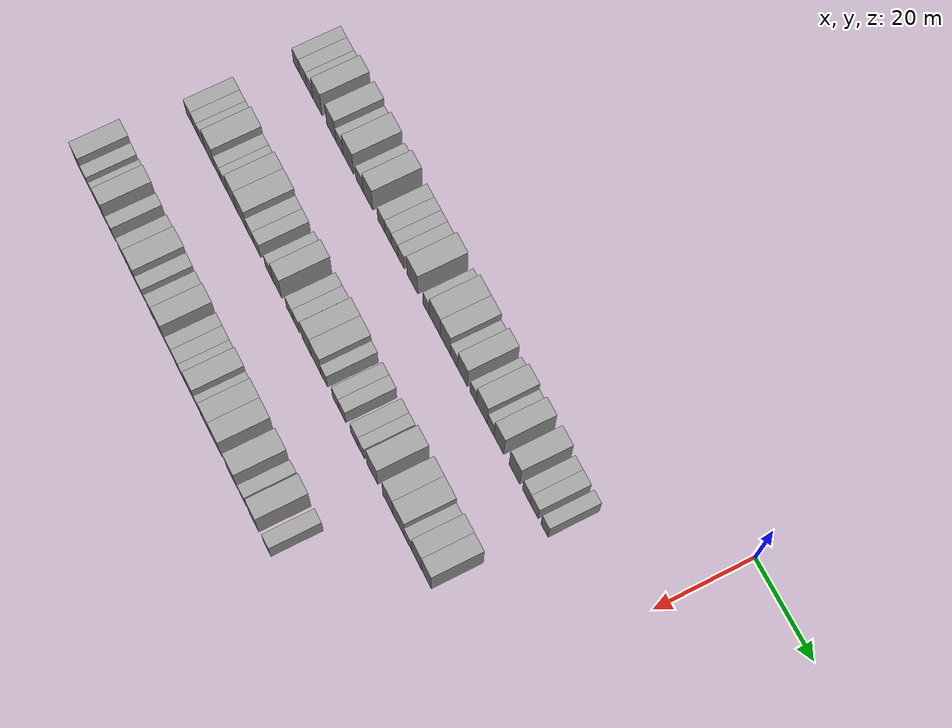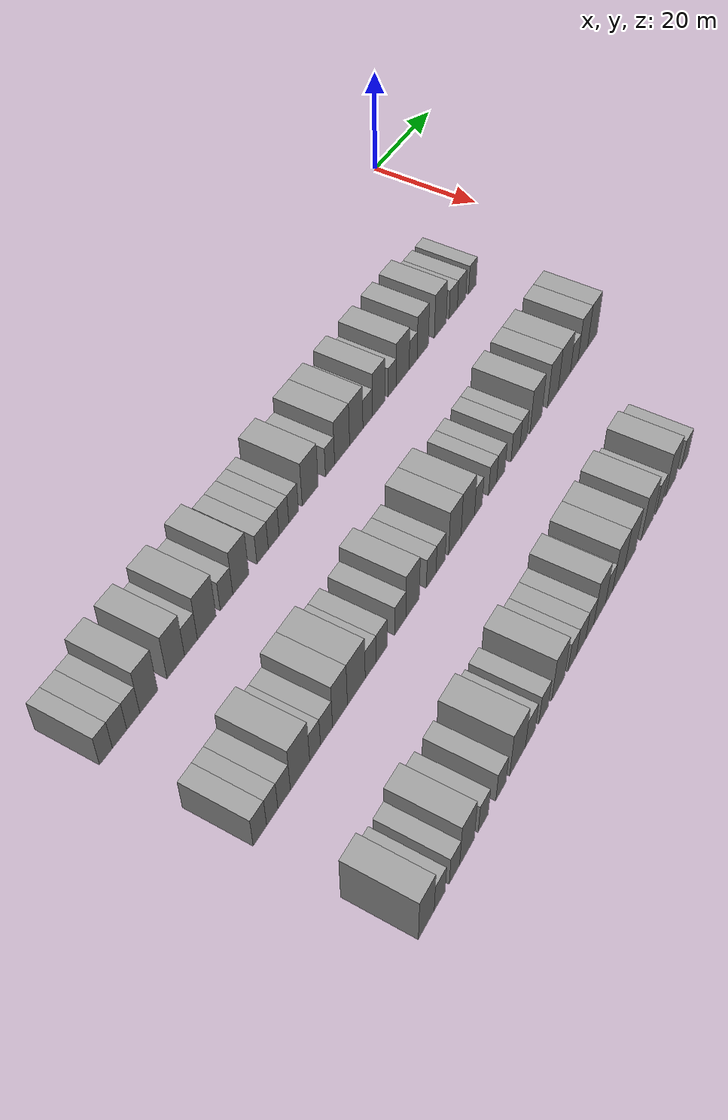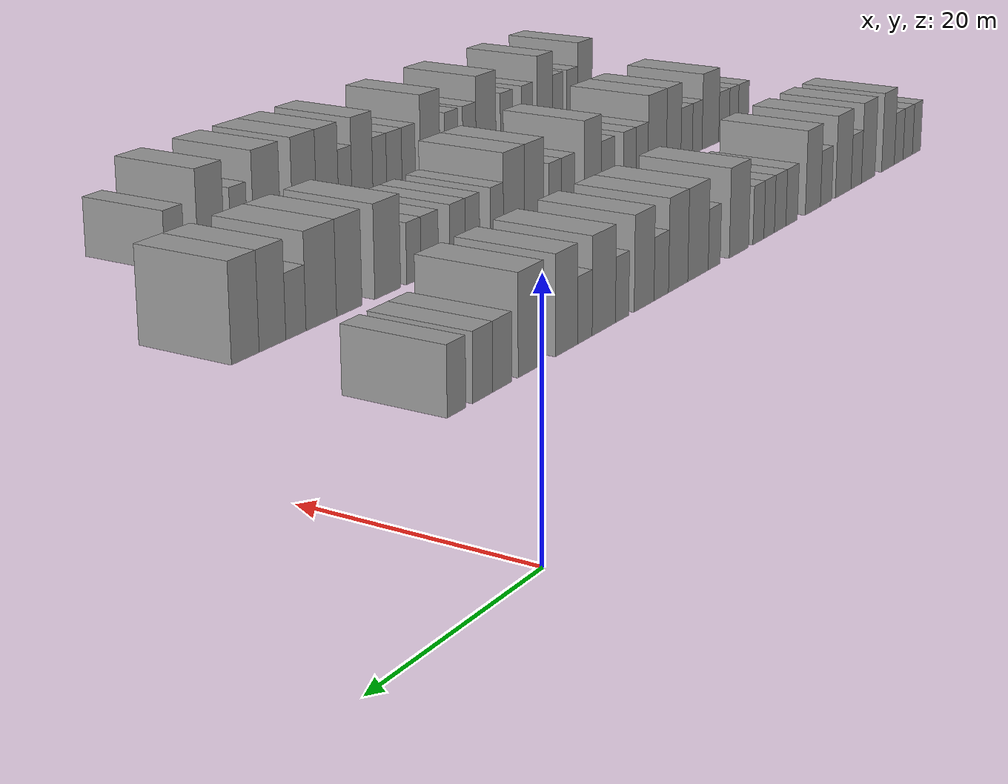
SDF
<sdf version="1.6">
 <world name="default">
  <model name="building_57">
   <static>1</static>
   <pose>25.0000 -118.8301 0 0.000000 0.000000 0.000000</pose>
   <link name="link">
    <pose>0 0 3.00 0 0 0</pose>
    <collision name="collision"><geometry><box><size>10.0000 2.5911 6.0000</size></box></geometry></collision>
    <visual name="visual">
     <cast_shadows>0</cast_shadows>
     <geometry><box><size>10.0000 2.5911 6.0000</size></box></geometry>
     <material>
      <script>
       <uri>model://grey_wall/materials/scripts</uri>
       <uri>model://grey_wall/materials/textures</uri>
       <name>vrc/grey_wall</name>
      </script>
     </material>
    </visual>
   </link>
  </model>
  <model name="building_58">
   <static>1</static>
   <pose>25.0000 -116.0676 0 0.000000 0.000000 0.000000</pose>
   <link name="link">
    <pose>0 0 3.00 0 0 0</pose>
    <collision name="collision"><geometry><box><size>10.0000 2.9338 6.0000</size></box></geometry></collision>
    <visual name="visual">
     <cast_shadows>0</cast_shadows>
     <geometry><box><size>10.0000 2.9338 6.0000</size></box></geometry>
     <material>
      <script>
       <uri>model://grey_wall/materials/scripts</uri>
       <uri>model://grey_wall/materials/textures</uri>
       <name>vrc/grey_wall</name>
      </script>
     </material>
    </visual>
   </link>
  </model>
  <model name="building_59">
   <static>1</static>
   <pose>25.0000 -113.2527 0 0.000000 0.000000 0.000000</pose>
   <link name="link">
    <pose>0 0 3.00 0 0 0</pose>
    <collision name="collision"><geometry><box><size>10.0000 2.6960 6.0000</size></box></geometry></collision>
    <visual name="visual">
     <cast_shadows>0</cast_shadows>
     <geometry><box><size>10.0000 2.6960 6.0000</size></box></geometry>
     <material>
      <script>
       <uri>model://grey_wall/materials/scripts</uri>
       <uri>model://grey_wall/materials/textures</uri>
       <name>vrc/grey_wall</name>
      </script>
     </material>
    </visual>
   </link>
  </model>
  <model name="building_60">
   <static>1</static>
   <pose>25.0000 -109.9994 0 0.000000 0.000000 0.000000</pose>
   <link name="link">
    <pose>0 0 4.50 0 0 0</pose>
    <collision name="collision"><geometry><box><size>10.0000 3.8105 9.0000</size></box></geometry></collision>
    <visual name="visual">
     <cast_shadows>0</cast_shadows>
     <geometry><box><size>10.0000 3.8105 9.0000</size></box></geometry>
     <material>
      <script>
       <uri>model://grey_wall/materials/scripts</uri>
       <uri>model://grey_wall/materials/textures</uri>
       <name>vrc/grey_wall</name>
      </script>
     </material>
    </visual>
   </link>
  </model>
  <model name="building_61">
   <static>1</static>
   <pose>25.0000 -104.1493 0 0.000000 0.000000 0.000000</pose>
   <link name="link">
    <pose>0 0 4.50 0 0 0</pose>
    <collision name="collision"><geometry><box><size>10.0000 3.8898 9.0000</size></box></geometry></collision>
    <visual name="visual">
     <cast_shadows>0</cast_shadows>
     <geometry><box><size>10.0000 3.8898 9.0000</size></box></geometry>
     <material>
      <script>
       <uri>model://grey_wall/materials/scripts</uri>
       <uri>model://grey_wall/materials/textures</uri>
       <name>vrc/grey_wall</name>
      </script>
     </material>
    </visual>
   </link>
  </model>
  <model name="building_62">
   <static>1</static>
   <pose>25.0000 -100.7538 0 0.000000 0.000000 0.000000</pose>
   <link name="link">
    <pose>0 0 3.00 0 0 0</pose>
    <collision name="collision"><geometry><box><size>10.0000 2.9012 6.0000</size></box></geometry></collision>
    <visual name="visual">
     <cast_shadows>0</cast_shadows>
     <geometry><box><size>10.0000 2.9012 6.0000</size></box></geometry>
     <material>
      <script>
       <uri>model://grey_wall/materials/scripts</uri>
       <uri>model://grey_wall/materials/textures</uri>
       <name>vrc/grey_wall</name>
      </script>
     </material>
    </visual>
   </link>
  </model>
  <model name="building_63">
   <static>1</static>
   <pose>25.0000 -97.1521 0 0.000000 0.000000 0.000000</pose>
   <link name="link">
    <pose>0 0 4.50 0 0 0</pose>
    <collision name="collision"><geometry><box><size>10.0000 4.3023 9.0000</size></box></geometry></collision>
    <visual name="visual">
     <cast_shadows>0</cast_shadows>
     <geometry><box><size>10.0000 4.3023 9.0000</size></box></geometry>
     <material>
      <script>
       <uri>model://grey_wall/materials/scripts</uri>
       <uri>model://grey_wall/materials/textures</uri>
       <name>vrc/grey_wall</name>
      </script>
     </material>
    </visual>
   </link>
  </model>
  <model name="building_64">
   <static>1</static>
   <pose>25.0000 -92.5149 0 0.000000 0.000000 0.000000</pose>
   <link name="link">
    <pose>0 0 3.00 0 0 0</pose>
    <collision name="collision"><geometry><box><size>10.0000 2.9720 6.0000</size></box></geometry></collision>
    <visual name="visual">
     <cast_shadows>0</cast_shadows>
     <geometry><box><size>10.0000 2.9720 6.0000</size></box></geometry>
     <material>
      <script>
       <uri>model://grey_wall/materials/scripts</uri>
       <uri>model://grey_wall/materials/textures</uri>
       <name>vrc/grey_wall</name>
      </script>
     </material>
    </visual>
   </link>
  </model>
  <model name="building_65">
   <static>1</static>
   <pose>25.0000 -89.0761 0 0.000000 0.000000 0.000000</pose>
   <link name="link">
    <pose>0 0 4.50 0 0 0</pose>
    <collision name="collision"><geometry><box><size>10.0000 3.9056 9.0000</size></box></geometry></collision>
    <visual name="visual">
     <cast_shadows>0</cast_shadows>
     <geometry><box><size>10.0000 3.9056 9.0000</size></box></geometry>
     <material>
      <script>
       <uri>model://grey_wall/materials/scripts</uri>
       <uri>model://grey_wall/materials/textures</uri>
       <name>vrc/grey_wall</name>
      </script>
     </material>
    </visual>
   </link>
  </model>
  <model name="building_66">
   <static>1</static>
   <pose>25.0000 -83.6893 0 0.000000 0.000000 0.000000</pose>
   <link name="link">
    <pose>0 0 3.00 0 0 0</pose>
    <collision name="collision"><geometry><box><size>10.0000 2.8680 6.0000</size></box></geometry></collision>
    <visual name="visual">
     <cast_shadows>0</cast_shadows>
     <geometry><box><size>10.0000 2.8680 6.0000</size></box></geometry>
     <material>
      <script>
       <uri>model://grey_wall/materials/scripts</uri>
       <uri>model://grey_wall/materials/textures</uri>
       <name>vrc/grey_wall</name>
      </script>
     </material>
    </visual>
   </link>
  </model>
  <model name="building_67">
   <static>1</static>
   <pose>25.0000 -80.8635 0 0.000000 0.000000 0.000000</pose>
   <link name="link">
    <pose>0 0 3.00 0 0 0</pose>
    <collision name="collision"><geometry><box><size>10.0000 2.7835 6.0000</size></box></geometry></collision>
    <visual name="visual">
     <cast_shadows>0</cast_shadows>
     <geometry><box><size>10.0000 2.7835 6.0000</size></box></geometry>
     <material>
      <script>
       <uri>model://grey_wall/materials/scripts</uri>
       <uri>model://grey_wall/materials/textures</uri>
       <name>vrc/grey_wall</name>
      </script>
     </material>
    </visual>
   </link>
  </model>
  <model name="building_68">
   <static>1</static>
   <pose>25.0000 -78.2213 0 0.000000 0.000000 0.000000</pose>
   <link name="link">
    <pose>0 0 3.00 0 0 0</pose>
    <collision name="collision"><geometry><box><size>10.0000 2.5008 6.0000</size></box></geometry></collision>
    <visual name="visual">
     <cast_shadows>0</cast_shadows>
     <geometry><box><size>10.0000 2.5008 6.0000</size></box></geometry>
     <material>
      <script>
       <uri>model://grey_wall/materials/scripts</uri>
       <uri>model://grey_wall/materials/textures</uri>
       <name>vrc/grey_wall</name>
      </script>
     </material>
    </visual>
   </link>
  </model>
  <model name="building_69">
   <static>1</static>
   <pose>25.0000 -75.6935 0 0.000000 0.000000 0.000000</pose>
   <link name="link">
    <pose>0 0 3.00 0 0 0</pose>
    <collision name="collision"><geometry><box><size>10.0000 2.5548 6.0000</size></box></geometry></collision>
    <visual name="visual">
     <cast_shadows>0</cast_shadows>
     <geometry><box><size>10.0000 2.5548 6.0000</size></box></geometry>
     <material>
      <script>
       <uri>model://grey_wall/materials/scripts</uri>
       <uri>model://grey_wall/materials/textures</uri>
       <name>vrc/grey_wall</name>
      </script>
     </material>
    </visual>
   </link>
  </model>
  <model name="building_70">
   <static>1</static>
   <pose>25.0000 -71.2420 0 0.000000 0.000000 0.000000</pose>
   <link name="link">
    <pose>0 0 4.50 0 0 0</pose>
    <collision name="collision"><geometry><box><size>10.0000 4.3483 9.0000</size></box></geometry></collision>
    <visual name="visual">
     <cast_shadows>0</cast_shadows>
     <geometry><box><size>10.0000 4.3483 9.0000</size></box></geometry>
     <material>
      <script>
       <uri>model://grey_wall/materials/scripts</uri>
       <uri>model://grey_wall/materials/textures</uri>
       <name>vrc/grey_wall</name>
      </script>
     </material>
    </visual>
   </link>
  </model>
  <model name="building_71">
   <static>1</static>
   <pose>25.0000 -65.7825 0 0.000000 0.000000 0.000000</pose>
   <link name="link">
    <pose>0 0 3.00 0 0 0</pose>
    <collision name="collision"><geometry><box><size>10.0000 2.5708 6.0000</size></box></geometry></collision>
    <visual name="visual">
     <cast_shadows>0</cast_shadows>
     <geometry><box><size>10.0000 2.5708 6.0000</size></box></geometry>
     <material>
      <script>
       <uri>model://grey_wall/materials/scripts</uri>
       <uri>model://grey_wall/materials/textures</uri>
       <name>vrc/grey_wall</name>
      </script>
     </material>
    </visual>
   </link>
  </model>
  <model name="building_72">
   <static>1</static>
   <pose>25.0000 -62.3604 0 0.000000 0.000000 0.000000</pose>
   <link name="link">
    <pose>0 0 4.50 0 0 0</pose>
    <collision name="collision"><geometry><box><size>10.0000 4.2733 9.0000</size></box></geometry></collision>
    <visual name="visual">
     <cast_shadows>0</cast_shadows>
     <geometry><box><size>10.0000 4.2733 9.0000</size></box></geometry>
     <material>
      <script>
       <uri>model://grey_wall/materials/scripts</uri>
       <uri>model://grey_wall/materials/textures</uri>
       <name>vrc/grey_wall</name>
      </script>
     </material>
    </visual>
   </link>
  </model>
  <model name="building_73">
   <static>1</static>
   <pose>25.0000 -58.2709 0 0.000000 0.000000 0.000000</pose>
   <link name="link">
    <pose>0 0 4.50 0 0 0</pose>
    <collision name="collision"><geometry><box><size>10.0000 3.9057 9.0000</size></box></geometry></collision>
    <visual name="visual">
     <cast_shadows>0</cast_shadows>
     <geometry><box><size>10.0000 3.9057 9.0000</size></box></geometry>
     <material>
      <script>
       <uri>model://grey_wall/materials/scripts</uri>
       <uri>model://grey_wall/materials/textures</uri>
       <name>vrc/grey_wall</name>
      </script>
     </material>
    </visual>
   </link>
  </model>
  <model name="building_74">
   <static>1</static>
   <pose>25.0000 -54.8946 0 0.000000 0.000000 0.000000</pose>
   <link name="link">
    <pose>0 0 3.00 0 0 0</pose>
    <collision name="collision"><geometry><box><size>10.0000 2.8469 6.0000</size></box></geometry></collision>
    <visual name="visual">
     <cast_shadows>0</cast_shadows>
     <geometry><box><size>10.0000 2.8469 6.0000</size></box></geometry>
     <material>
      <script>
       <uri>model://grey_wall/materials/scripts</uri>
       <uri>model://grey_wall/materials/textures</uri>
       <name>vrc/grey_wall</name>
      </script>
     </material>
    </visual>
   </link>
  </model>
  <model name="building_75">
   <static>1</static>
   <pose>25.0000 -51.5770 0 0.000000 0.000000 0.000000</pose>
   <link name="link">
    <pose>0 0 4.50 0 0 0</pose>
    <collision name="collision"><geometry><box><size>10.0000 3.7884 9.0000</size></box></geometry></collision>
    <visual name="visual">
     <cast_shadows>0</cast_shadows>
     <geometry><box><size>10.0000 3.7884 9.0000</size></box></geometry>
     <material>
      <script>
       <uri>model://grey_wall/materials/scripts</uri>
       <uri>model://grey_wall/materials/textures</uri>
       <name>vrc/grey_wall</name>
      </script>
     </material>
    </visual>
   </link>
  </model>
  <model name="building_76">
   <static>1</static>
   <pose>25.0000 -47.4578 0 0.000000 0.000000 0.000000</pose>
   <link name="link">
    <pose>0 0 3.00 0 0 0</pose>
    <collision name="collision"><geometry><box><size>10.0000 2.4500 6.0000</size></box></geometry></collision>
    <visual name="visual">
     <cast_shadows>0</cast_shadows>
     <geometry><box><size>10.0000 2.4500 6.0000</size></box></geometry>
     <material>
      <script>
       <uri>model://grey_wall/materials/scripts</uri>
       <uri>model://grey_wall/materials/textures</uri>
       <name>vrc/grey_wall</name>
      </script>
     </material>
    </visual>
   </link>
  </model>
  <model name="building_77">
   <static>1</static>
   <pose>25.0000 -44.1462 0 0.000000 0.000000 0.000000</pose>
   <link name="link">
    <pose>0 0 4.50 0 0 0</pose>
    <collision name="collision"><geometry><box><size>10.0000 4.1734 9.0000</size></box></geometry></collision>
    <visual name="visual">
     <cast_shadows>0</cast_shadows>
     <geometry><box><size>10.0000 4.1734 9.0000</size></box></geometry>
     <material>
      <script>
       <uri>model://grey_wall/materials/scripts</uri>
       <uri>model://grey_wall/materials/textures</uri>
       <name>vrc/grey_wall</name>
      </script>
     </material>
    </visual>
   </link>
  </model>
  <model name="building_78">
   <static>1</static>
   <pose>25.0000 -40.7878 0 0.000000 0.000000 0.000000</pose>
   <link name="link">
    <pose>0 0 3.00 0 0 0</pose>
    <collision name="collision"><geometry><box><size>10.0000 2.5435 6.0000</size></box></geometry></collision>
    <visual name="visual">
     <cast_shadows>0</cast_shadows>
     <geometry><box><size>10.0000 2.5435 6.0000</size></box></geometry>
     <material>
      <script>
       <uri>model://grey_wall/materials/scripts</uri>
       <uri>model://grey_wall/materials/textures</uri>
       <name>vrc/grey_wall</name>
      </script>
     </material>
    </visual>
   </link>
  </model>
  <model name="building_79">
   <static>1</static>
   <pose>25.0000 -37.6702 0 0.000000 0.000000 0.000000</pose>
   <link name="link">
    <pose>0 0 4.50 0 0 0</pose>
    <collision name="collision"><geometry><box><size>10.0000 3.6915 9.0000</size></box></geometry></collision>
    <visual name="visual">
     <cast_shadows>0</cast_shadows>
     <geometry><box><size>10.0000 3.6915 9.0000</size></box></geometry>
     <material>
      <script>
       <uri>model://grey_wall/materials/scripts</uri>
       <uri>model://grey_wall/materials/textures</uri>
       <name>vrc/grey_wall</name>
      </script>
     </material>
    </visual>
   </link>
  </model>
  <model name="building_80">
   <static>1</static>
   <pose>25.0000 -31.8176 0 0.000000 0.000000 0.000000</pose>
   <link name="link">
    <pose>0 0 4.50 0 0 0</pose>
    <collision name="collision"><geometry><box><size>10.0000 4.0138 9.0000</size></box></geometry></collision>
    <visual name="visual">
     <cast_shadows>0</cast_shadows>
     <geometry><box><size>10.0000 4.0138 9.0000</size></box></geometry>
     <material>
      <script>
       <uri>model://grey_wall/materials/scripts</uri>
       <uri>model://grey_wall/materials/textures</uri>
       <name>vrc/grey_wall</name>
      </script>
     </material>
    </visual>
   </link>
  </model>
  <model name="building_81">
   <static>1</static>
   <pose>25.0000 -27.3669 0 0.000000 0.000000 0.000000</pose>
   <link name="link">
    <pose>0 0 3.00 0 0 0</pose>
    <collision name="collision"><geometry><box><size>10.0000 2.8876 6.0000</size></box></geometry></collision>
    <visual name="visual">
     <cast_shadows>0</cast_shadows>
     <geometry><box><size>10.0000 2.8876 6.0000</size></box></geometry>
     <material>
      <script>
       <uri>model://grey_wall/materials/scripts</uri>
       <uri>model://grey_wall/materials/textures</uri>
       <name>vrc/grey_wall</name>
      </script>
     </material>
    </visual>
   </link>
  </model>
  <model name="building_82">
   <static>1</static>
   <pose>25.0000 -24.4409 0 0.000000 0.000000 0.000000</pose>
   <link name="link">
    <pose>0 0 3.00 0 0 0</pose>
    <collision name="collision"><geometry><box><size>10.0000 2.9643 6.0000</size></box></geometry></collision>
    <visual name="visual">
     <cast_shadows>0</cast_shadows>
     <geometry><box><size>10.0000 2.9643 6.0000</size></box></geometry>
     <material>
      <script>
       <uri>model://grey_wall/materials/scripts</uri>
       <uri>model://grey_wall/materials/textures</uri>
       <name>vrc/grey_wall</name>
      </script>
     </material>
    </visual>
   </link>
  </model>
  <model name="building_83">
   <static>1</static>
   <pose>25.0000 -20.6208 0 0.000000 0.000000 0.000000</pose>
   <link name="link">
    <pose>0 0 3.00 0 0 0</pose>
    <collision name="collision"><geometry><box><size>10.0000 2.6760 6.0000</size></box></geometry></collision>
    <visual name="visual">
     <cast_shadows>0</cast_shadows>
     <geometry><box><size>10.0000 2.6760 6.0000</size></box></geometry>
     <material>
      <script>
       <uri>model://grey_wall/materials/scripts</uri>
       <uri>model://grey_wall/materials/textures</uri>
       <name>vrc/grey_wall</name>
      </script>
     </material>
    </visual>
   </link>
  </model>
  <model name="building_249">
   <static>1</static>
   <pose>47.0000 -118.3741 0 0.000000 0.000000 0.000000</pose>
   <link name="link">
    <pose>0 0 3.00 0 0 0</pose>
    <collision name="collision"><geometry><box><size>10.0000 2.8987 6.0000</size></box></geometry></collision>
    <visual name="visual">
     <cast_shadows>0</cast_shadows>
     <geometry><box><size>10.0000 2.8987 6.0000</size></box></geometry>
     <material>
      <script>
       <uri>model://grey_wall/materials/scripts</uri>
       <uri>model://grey_wall/materials/textures</uri>
       <name>vrc/grey_wall</name>
      </script>
     </material>
    </visual>
   </link>
  </model>
  <model name="building_250">
   <static>1</static>
   <pose>47.0000 -115.6920 0 0.000000 0.000000 0.000000</pose>
   <link name="link">
    <pose>0 0 3.00 0 0 0</pose>
    <collision name="collision"><geometry><box><size>10.0000 2.4655 6.0000</size></box></geometry></collision>
    <visual name="visual">
     <cast_shadows>0</cast_shadows>
     <geometry><box><size>10.0000 2.4655 6.0000</size></box></geometry>
     <material>
      <script>
       <uri>model://grey_wall/materials/scripts</uri>
       <uri>model://grey_wall/materials/textures</uri>
       <name>vrc/grey_wall</name>
      </script>
     </material>
    </visual>
   </link>
  </model>
  <model name="building_251">
   <static>1</static>
   <pose>47.0000 -113.0631 0 0.000000 0.000000 0.000000</pose>
   <link name="link">
    <pose>0 0 3.00 0 0 0</pose>
    <collision name="collision"><geometry><box><size>10.0000 2.7924 6.0000</size></box></geometry></collision>
    <visual name="visual">
     <cast_shadows>0</cast_shadows>
     <geometry><box><size>10.0000 2.7924 6.0000</size></box></geometry>
     <material>
      <script>
       <uri>model://grey_wall/materials/scripts</uri>
       <uri>model://grey_wall/materials/textures</uri>
       <name>vrc/grey_wall</name>
      </script>
     </material>
    </visual>
   </link>
  </model>
  <model name="building_252">
   <static>1</static>
   <pose>47.0000 -109.4588 0 0.000000 0.000000 0.000000</pose>
   <link name="link">
    <pose>0 0 4.50 0 0 0</pose>
    <collision name="collision"><geometry><box><size>10.0000 4.4162 9.0000</size></box></geometry></collision>
    <visual name="visual">
     <cast_shadows>0</cast_shadows>
     <geometry><box><size>10.0000 4.4162 9.0000</size></box></geometry>
     <material>
      <script>
       <uri>model://grey_wall/materials/scripts</uri>
       <uri>model://grey_wall/materials/textures</uri>
       <name>vrc/grey_wall</name>
      </script>
     </material>
    </visual>
   </link>
  </model>
  <model name="building_253">
   <static>1</static>
   <pose>47.0000 -105.9920 0 0.000000 0.000000 0.000000</pose>
   <link name="link">
    <pose>0 0 3.00 0 0 0</pose>
    <collision name="collision"><geometry><box><size>10.0000 2.5172 6.0000</size></box></geometry></collision>
    <visual name="visual">
     <cast_shadows>0</cast_shadows>
     <geometry><box><size>10.0000 2.5172 6.0000</size></box></geometry>
     <material>
      <script>
       <uri>model://grey_wall/materials/scripts</uri>
       <uri>model://grey_wall/materials/textures</uri>
       <name>vrc/grey_wall</name>
      </script>
     </material>
    </visual>
   </link>
  </model>
  <model name="building_254">
   <static>1</static>
   <pose>47.0000 -103.2946 0 0.000000 0.000000 0.000000</pose>
   <link name="link">
    <pose>0 0 3.00 0 0 0</pose>
    <collision name="collision"><geometry><box><size>10.0000 2.8776 6.0000</size></box></geometry></collision>
    <visual name="visual">
     <cast_shadows>0</cast_shadows>
     <geometry><box><size>10.0000 2.8776 6.0000</size></box></geometry>
     <material>
      <script>
       <uri>model://grey_wall/materials/scripts</uri>
       <uri>model://grey_wall/materials/textures</uri>
       <name>vrc/grey_wall</name>
      </script>
     </material>
    </visual>
   </link>
  </model>
  <model name="building_255">
   <static>1</static>
   <pose>47.0000 -100.0454 0 0.000000 0.000000 0.000000</pose>
   <link name="link">
    <pose>0 0 4.50 0 0 0</pose>
    <collision name="collision"><geometry><box><size>10.0000 3.6208 9.0000</size></box></geometry></collision>
    <visual name="visual">
     <cast_shadows>0</cast_shadows>
     <geometry><box><size>10.0000 3.6208 9.0000</size></box></geometry>
     <material>
      <script>
       <uri>model://grey_wall/materials/scripts</uri>
       <uri>model://grey_wall/materials/textures</uri>
       <name>vrc/grey_wall</name>
      </script>
     </material>
    </visual>
   </link>
  </model>
  <model name="building_256">
   <static>1</static>
   <pose>47.0000 -96.0049 0 0.000000 0.000000 0.000000</pose>
   <link name="link">
    <pose>0 0 4.50 0 0 0</pose>
    <collision name="collision"><geometry><box><size>10.0000 4.4601 9.0000</size></box></geometry></collision>
    <visual name="visual">
     <cast_shadows>0</cast_shadows>
     <geometry><box><size>10.0000 4.4601 9.0000</size></box></geometry>
     <material>
      <script>
       <uri>model://grey_wall/materials/scripts</uri>
       <uri>model://grey_wall/materials/textures</uri>
       <name>vrc/grey_wall</name>
      </script>
     </material>
    </visual>
   </link>
  </model>
  <model name="building_257">
   <static>1</static>
   <pose>47.0000 -92.3596 0 0.000000 0.000000 0.000000</pose>
   <link name="link">
    <pose>0 0 3.00 0 0 0</pose>
    <collision name="collision"><geometry><box><size>10.0000 2.8306 6.0000</size></box></geometry></collision>
    <visual name="visual">
     <cast_shadows>0</cast_shadows>
     <geometry><box><size>10.0000 2.8306 6.0000</size></box></geometry>
     <material>
      <script>
       <uri>model://grey_wall/materials/scripts</uri>
       <uri>model://grey_wall/materials/textures</uri>
       <name>vrc/grey_wall</name>
      </script>
     </material>
    </visual>
   </link>
  </model>
  <model name="building_258">
   <static>1</static>
   <pose>47.0000 -89.5088 0 0.000000 0.000000 0.000000</pose>
   <link name="link">
    <pose>0 0 3.00 0 0 0</pose>
    <collision name="collision"><geometry><box><size>10.0000 2.8710 6.0000</size></box></geometry></collision>
    <visual name="visual">
     <cast_shadows>0</cast_shadows>
     <geometry><box><size>10.0000 2.8710 6.0000</size></box></geometry>
     <material>
      <script>
       <uri>model://grey_wall/materials/scripts</uri>
       <uri>model://grey_wall/materials/textures</uri>
       <name>vrc/grey_wall</name>
      </script>
     </material>
    </visual>
   </link>
  </model>
  <model name="building_259">
   <static>1</static>
   <pose>47.0000 -84.5749 0 0.000000 0.000000 0.000000</pose>
   <link name="link">
    <pose>0 0 3.00 0 0 0</pose>
    <collision name="collision"><geometry><box><size>10.0000 2.9968 6.0000</size></box></geometry></collision>
    <visual name="visual">
     <cast_shadows>0</cast_shadows>
     <geometry><box><size>10.0000 2.9968 6.0000</size></box></geometry>
     <material>
      <script>
       <uri>model://grey_wall/materials/scripts</uri>
       <uri>model://grey_wall/materials/textures</uri>
       <name>vrc/grey_wall</name>
      </script>
     </material>
    </visual>
   </link>
  </model>
  <model name="building_260">
   <static>1</static>
   <pose>47.0000 -81.2248 0 0.000000 0.000000 0.000000</pose>
   <link name="link">
    <pose>0 0 4.50 0 0 0</pose>
    <collision name="collision"><geometry><box><size>10.0000 3.7034 9.0000</size></box></geometry></collision>
    <visual name="visual">
     <cast_shadows>0</cast_shadows>
     <geometry><box><size>10.0000 3.7034 9.0000</size></box></geometry>
     <material>
      <script>
       <uri>model://grey_wall/materials/scripts</uri>
       <uri>model://grey_wall/materials/textures</uri>
       <name>vrc/grey_wall</name>
      </script>
     </material>
    </visual>
   </link>
  </model>
  <model name="building_261">
   <static>1</static>
   <pose>47.0000 -75.9961 0 0.000000 0.000000 0.000000</pose>
   <link name="link">
    <pose>0 0 3.00 0 0 0</pose>
    <collision name="collision"><geometry><box><size>10.0000 2.7541 6.0000</size></box></geometry></collision>
    <visual name="visual">
     <cast_shadows>0</cast_shadows>
     <geometry><box><size>10.0000 2.7541 6.0000</size></box></geometry>
     <material>
      <script>
       <uri>model://grey_wall/materials/scripts</uri>
       <uri>model://grey_wall/materials/textures</uri>
       <name>vrc/grey_wall</name>
      </script>
     </material>
    </visual>
   </link>
  </model>
  <model name="building_262">
   <static>1</static>
   <pose>47.0000 -73.2984 0 0.000000 0.000000 0.000000</pose>
   <link name="link">
    <pose>0 0 3.00 0 0 0</pose>
    <collision name="collision"><geometry><box><size>10.0000 2.6412 6.0000</size></box></geometry></collision>
    <visual name="visual">
     <cast_shadows>0</cast_shadows>
     <geometry><box><size>10.0000 2.6412 6.0000</size></box></geometry>
     <material>
      <script>
       <uri>model://grey_wall/materials/scripts</uri>
       <uri>model://grey_wall/materials/textures</uri>
       <name>vrc/grey_wall</name>
      </script>
     </material>
    </visual>
   </link>
  </model>
  <model name="building_263">
   <static>1</static>
   <pose>47.0000 -69.1170 0 0.000000 0.000000 0.000000</pose>
   <link name="link">
    <pose>0 0 4.50 0 0 0</pose>
    <collision name="collision"><geometry><box><size>10.0000 3.7216 9.0000</size></box></geometry></collision>
    <visual name="visual">
     <cast_shadows>0</cast_shadows>
     <geometry><box><size>10.0000 3.7216 9.0000</size></box></geometry>
     <material>
      <script>
       <uri>model://grey_wall/materials/scripts</uri>
       <uri>model://grey_wall/materials/textures</uri>
       <name>vrc/grey_wall</name>
      </script>
     </material>
    </visual>
   </link>
  </model>
  <model name="building_264">
   <static>1</static>
   <pose>47.0000 -65.2083 0 0.000000 0.000000 0.000000</pose>
   <link name="link">
    <pose>0 0 4.50 0 0 0</pose>
    <collision name="collision"><geometry><box><size>10.0000 4.0959 9.0000</size></box></geometry></collision>
    <visual name="visual">
     <cast_shadows>0</cast_shadows>
     <geometry><box><size>10.0000 4.0959 9.0000</size></box></geometry>
     <material>
      <script>
       <uri>model://grey_wall/materials/scripts</uri>
       <uri>model://grey_wall/materials/textures</uri>
       <name>vrc/grey_wall</name>
      </script>
     </material>
    </visual>
   </link>
  </model>
  <model name="building_265">
   <static>1</static>
   <pose>47.0000 -61.9571 0 0.000000 0.000000 0.000000</pose>
   <link name="link">
    <pose>0 0 3.00 0 0 0</pose>
    <collision name="collision"><geometry><box><size>10.0000 2.4065 6.0000</size></box></geometry></collision>
    <visual name="visual">
     <cast_shadows>0</cast_shadows>
     <geometry><box><size>10.0000 2.4065 6.0000</size></box></geometry>
     <material>
      <script>
       <uri>model://grey_wall/materials/scripts</uri>
       <uri>model://grey_wall/materials/textures</uri>
       <name>vrc/grey_wall</name>
      </script>
     </material>
    </visual>
   </link>
  </model>
  <model name="building_266">
   <static>1</static>
   <pose>47.0000 -57.4736 0 0.000000 0.000000 0.000000</pose>
   <link name="link">
    <pose>0 0 3.00 0 0 0</pose>
    <collision name="collision"><geometry><box><size>10.0000 2.5605 6.0000</size></box></geometry></collision>
    <visual name="visual">
     <cast_shadows>0</cast_shadows>
     <geometry><box><size>10.0000 2.5605 6.0000</size></box></geometry>
     <material>
      <script>
       <uri>model://grey_wall/materials/scripts</uri>
       <uri>model://grey_wall/materials/textures</uri>
       <name>vrc/grey_wall</name>
      </script>
     </material>
    </visual>
   </link>
  </model>
  <model name="building_267">
   <static>1</static>
   <pose>47.0000 -54.8199 0 0.000000 0.000000 0.000000</pose>
   <link name="link">
    <pose>0 0 3.00 0 0 0</pose>
    <collision name="collision"><geometry><box><size>10.0000 2.7468 6.0000</size></box></geometry></collision>
    <visual name="visual">
     <cast_shadows>0</cast_shadows>
     <geometry><box><size>10.0000 2.7468 6.0000</size></box></geometry>
     <material>
      <script>
       <uri>model://grey_wall/materials/scripts</uri>
       <uri>model://grey_wall/materials/textures</uri>
       <name>vrc/grey_wall</name>
      </script>
     </material>
    </visual>
   </link>
  </model>
  <model name="building_268">
   <static>1</static>
   <pose>47.0000 -49.9681 0 0.000000 0.000000 0.000000</pose>
   <link name="link">
    <pose>0 0 3.00 0 0 0</pose>
    <collision name="collision"><geometry><box><size>10.0000 2.9569 6.0000</size></box></geometry></collision>
    <visual name="visual">
     <cast_shadows>0</cast_shadows>
     <geometry><box><size>10.0000 2.9569 6.0000</size></box></geometry>
     <material>
      <script>
       <uri>model://grey_wall/materials/scripts</uri>
       <uri>model://grey_wall/materials/textures</uri>
       <name>vrc/grey_wall</name>
      </script>
     </material>
    </visual>
   </link>
  </model>
  <model name="building_269">
   <static>1</static>
   <pose>47.0000 -47.2884 0 0.000000 0.000000 0.000000</pose>
   <link name="link">
    <pose>0 0 3.00 0 0 0</pose>
    <collision name="collision"><geometry><box><size>10.0000 2.4025 6.0000</size></box></geometry></collision>
    <visual name="visual">
     <cast_shadows>0</cast_shadows>
     <geometry><box><size>10.0000 2.4025 6.0000</size></box></geometry>
     <material>
      <script>
       <uri>model://grey_wall/materials/scripts</uri>
       <uri>model://grey_wall/materials/textures</uri>
       <name>vrc/grey_wall</name>
      </script>
     </material>
    </visual>
   </link>
  </model>
  <model name="building_270">
   <static>1</static>
   <pose>47.0000 -43.0171 0 0.000000 0.000000 0.000000</pose>
   <link name="link">
    <pose>0 0 4.50 0 0 0</pose>
    <collision name="collision"><geometry><box><size>10.0000 4.1401 9.0000</size></box></geometry></collision>
    <visual name="visual">
     <cast_shadows>0</cast_shadows>
     <geometry><box><size>10.0000 4.1401 9.0000</size></box></geometry>
     <material>
      <script>
       <uri>model://grey_wall/materials/scripts</uri>
       <uri>model://grey_wall/materials/textures</uri>
       <name>vrc/grey_wall</name>
      </script>
     </material>
    </visual>
   </link>
  </model>
  <model name="building_271">
   <static>1</static>
   <pose>47.0000 -37.0132 0 0.000000 0.000000 0.000000</pose>
   <link name="link">
    <pose>0 0 4.50 0 0 0</pose>
    <collision name="collision"><geometry><box><size>10.0000 3.8678 9.0000</size></box></geometry></collision>
    <visual name="visual">
     <cast_shadows>0</cast_shadows>
     <geometry><box><size>10.0000 3.8678 9.0000</size></box></geometry>
     <material>
      <script>
       <uri>model://grey_wall/materials/scripts</uri>
       <uri>model://grey_wall/materials/textures</uri>
       <name>vrc/grey_wall</name>
      </script>
     </material>
    </visual>
   </link>
  </model>
  <model name="building_272">
   <static>1</static>
   <pose>47.0000 -32.8406 0 0.000000 0.000000 0.000000</pose>
   <link name="link">
    <pose>0 0 4.50 0 0 0</pose>
    <collision name="collision"><geometry><box><size>10.0000 4.4773 9.0000</size></box></geometry></collision>
    <visual name="visual">
     <cast_shadows>0</cast_shadows>
     <geometry><box><size>10.0000 4.4773 9.0000</size></box></geometry>
     <material>
      <script>
       <uri>model://grey_wall/materials/scripts</uri>
       <uri>model://grey_wall/materials/textures</uri>
       <name>vrc/grey_wall</name>
      </script>
     </material>
    </visual>
   </link>
  </model>
  <model name="building_273">
   <static>1</static>
   <pose>47.0000 -29.1661 0 0.000000 0.000000 0.000000</pose>
   <link name="link">
    <pose>0 0 3.00 0 0 0</pose>
    <collision name="collision"><geometry><box><size>10.0000 2.8719 6.0000</size></box></geometry></collision>
    <visual name="visual">
     <cast_shadows>0</cast_shadows>
     <geometry><box><size>10.0000 2.8719 6.0000</size></box></geometry>
     <material>
      <script>
       <uri>model://grey_wall/materials/scripts</uri>
       <uri>model://grey_wall/materials/textures</uri>
       <name>vrc/grey_wall</name>
      </script>
     </material>
    </visual>
   </link>
  </model>
  <model name="building_274">
   <static>1</static>
   <pose>47.0000 -25.8925 0 0.000000 0.000000 0.000000</pose>
   <link name="link">
    <pose>0 0 4.50 0 0 0</pose>
    <collision name="collision"><geometry><box><size>10.0000 3.6751 9.0000</size></box></geometry></collision>
    <visual name="visual">
     <cast_shadows>0</cast_shadows>
     <geometry><box><size>10.0000 3.6751 9.0000</size></box></geometry>
     <material>
      <script>
       <uri>model://grey_wall/materials/scripts</uri>
       <uri>model://grey_wall/materials/textures</uri>
       <name>vrc/grey_wall</name>
      </script>
     </material>
    </visual>
   </link>
  </model>
  <model name="building_275">
   <static>1</static>
   <pose>47.0000 -22.2074 0 0.000000 0.000000 0.000000</pose>
   <link name="link">
    <pose>0 0 4.50 0 0 0</pose>
    <collision name="collision"><geometry><box><size>10.0000 3.6951 9.0000</size></box></geometry></collision>
    <visual name="visual">
     <cast_shadows>0</cast_shadows>
     <geometry><box><size>10.0000 3.6951 9.0000</size></box></geometry>
     <material>
      <script>
       <uri>model://grey_wall/materials/scripts</uri>
       <uri>model://grey_wall/materials/textures</uri>
       <name>vrc/grey_wall</name>
      </script>
     </material>
    </visual>
   </link>
  </model>
  <model name="building_439">
   <static>1</static>
   <pose>69.0000 -118.2815 0 0.000000 0.000000 0.000000</pose>
   <link name="link">
    <pose>0 0 4.50 0 0 0</pose>
    <collision name="collision"><geometry><box><size>10.0000 3.7280 9.0000</size></box></geometry></collision>
    <visual name="visual">
     <cast_shadows>0</cast_shadows>
     <geometry><box><size>10.0000 3.7280 9.0000</size></box></geometry>
     <material>
      <script>
       <uri>model://grey_wall/materials/scripts</uri>
       <uri>model://grey_wall/materials/textures</uri>
       <name>vrc/grey_wall</name>
      </script>
     </material>
    </visual>
   </link>
  </model>
  <model name="building_440">
   <static>1</static>
   <pose>69.0000 -115.0906 0 0.000000 0.000000 0.000000</pose>
   <link name="link">
    <pose>0 0 3.00 0 0 0</pose>
    <collision name="collision"><geometry><box><size>10.0000 2.6538 6.0000</size></box></geometry></collision>
    <visual name="visual">
     <cast_shadows>0</cast_shadows>
     <geometry><box><size>10.0000 2.6538 6.0000</size></box></geometry>
     <material>
      <script>
       <uri>model://grey_wall/materials/scripts</uri>
       <uri>model://grey_wall/materials/textures</uri>
       <name>vrc/grey_wall</name>
      </script>
     </material>
    </visual>
   </link>
  </model>
  <model name="building_441">
   <static>1</static>
   <pose>69.0000 -111.4883 0 0.000000 0.000000 0.000000</pose>
   <link name="link">
    <pose>0 0 3.00 0 0 0</pose>
    <collision name="collision"><geometry><box><size>10.0000 2.5507 6.0000</size></box></geometry></collision>
    <visual name="visual">
     <cast_shadows>0</cast_shadows>
     <geometry><box><size>10.0000 2.5507 6.0000</size></box></geometry>
     <material>
      <script>
       <uri>model://grey_wall/materials/scripts</uri>
       <uri>model://grey_wall/materials/textures</uri>
       <name>vrc/grey_wall</name>
      </script>
     </material>
    </visual>
   </link>
  </model>
  <model name="building_442">
   <static>1</static>
   <pose>69.0000 -108.3526 0 0.000000 0.000000 0.000000</pose>
   <link name="link">
    <pose>0 0 4.50 0 0 0</pose>
    <collision name="collision"><geometry><box><size>10.0000 3.7207 9.0000</size></box></geometry></collision>
    <visual name="visual">
     <cast_shadows>0</cast_shadows>
     <geometry><box><size>10.0000 3.7207 9.0000</size></box></geometry>
     <material>
      <script>
       <uri>model://grey_wall/materials/scripts</uri>
       <uri>model://grey_wall/materials/textures</uri>
       <name>vrc/grey_wall</name>
      </script>
     </material>
    </visual>
   </link>
  </model>
  <model name="building_443">
   <static>1</static>
   <pose>69.0000 -104.1744 0 0.000000 0.000000 0.000000</pose>
   <link name="link">
    <pose>0 0 3.00 0 0 0</pose>
    <collision name="collision"><geometry><box><size>10.0000 2.6358 6.0000</size></box></geometry></collision>
    <visual name="visual">
     <cast_shadows>0</cast_shadows>
     <geometry><box><size>10.0000 2.6358 6.0000</size></box></geometry>
     <material>
      <script>
       <uri>model://grey_wall/materials/scripts</uri>
       <uri>model://grey_wall/materials/textures</uri>
       <name>vrc/grey_wall</name>
      </script>
     </material>
    </visual>
   </link>
  </model>
  <model name="building_444">
   <static>1</static>
   <pose>69.0000 -99.4746 0 0.000000 0.000000 0.000000</pose>
   <link name="link">
    <pose>0 0 3.00 0 0 0</pose>
    <collision name="collision"><geometry><box><size>10.0000 2.7636 6.0000</size></box></geometry></collision>
    <visual name="visual">
     <cast_shadows>0</cast_shadows>
     <geometry><box><size>10.0000 2.7636 6.0000</size></box></geometry>
     <material>
      <script>
       <uri>model://grey_wall/materials/scripts</uri>
       <uri>model://grey_wall/materials/textures</uri>
       <name>vrc/grey_wall</name>
      </script>
     </material>
    </visual>
   </link>
  </model>
  <model name="building_445">
   <static>1</static>
   <pose>69.0000 -94.9070 0 0.000000 0.000000 0.000000</pose>
   <link name="link">
    <pose>0 0 4.50 0 0 0</pose>
    <collision name="collision"><geometry><box><size>10.0000 4.3717 9.0000</size></box></geometry></collision>
    <visual name="visual">
     <cast_shadows>0</cast_shadows>
     <geometry><box><size>10.0000 4.3717 9.0000</size></box></geometry>
     <material>
      <script>
       <uri>model://grey_wall/materials/scripts</uri>
       <uri>model://grey_wall/materials/textures</uri>
       <name>vrc/grey_wall</name>
      </script>
     </material>
    </visual>
   </link>
  </model>
  <model name="building_446">
   <static>1</static>
   <pose>69.0000 -91.3014 0 0.000000 0.000000 0.000000</pose>
   <link name="link">
    <pose>0 0 3.00 0 0 0</pose>
    <collision name="collision"><geometry><box><size>10.0000 2.8394 6.0000</size></box></geometry></collision>
    <visual name="visual">
     <cast_shadows>0</cast_shadows>
     <geometry><box><size>10.0000 2.8394 6.0000</size></box></geometry>
     <material>
      <script>
       <uri>model://grey_wall/materials/scripts</uri>
       <uri>model://grey_wall/materials/textures</uri>
       <name>vrc/grey_wall</name>
      </script>
     </material>
    </visual>
   </link>
  </model>
  <model name="building_447">
   <static>1</static>
   <pose>69.0000 -87.4918 0 0.000000 0.000000 0.000000</pose>
   <link name="link">
    <pose>0 0 3.00 0 0 0</pose>
    <collision name="collision"><geometry><box><size>10.0000 2.7798 6.0000</size></box></geometry></collision>
    <visual name="visual">
     <cast_shadows>0</cast_shadows>
     <geometry><box><size>10.0000 2.7798 6.0000</size></box></geometry>
     <material>
      <script>
       <uri>model://grey_wall/materials/scripts</uri>
       <uri>model://grey_wall/materials/textures</uri>
       <name>vrc/grey_wall</name>
      </script>
     </material>
    </visual>
   </link>
  </model>
  <model name="building_448">
   <static>1</static>
   <pose>69.0000 -83.1272 0 0.000000 0.000000 0.000000</pose>
   <link name="link">
    <pose>0 0 4.50 0 0 0</pose>
    <collision name="collision"><geometry><box><size>10.0000 3.9493 9.0000</size></box></geometry></collision>
    <visual name="visual">
     <cast_shadows>0</cast_shadows>
     <geometry><box><size>10.0000 3.9493 9.0000</size></box></geometry>
     <material>
      <script>
       <uri>model://grey_wall/materials/scripts</uri>
       <uri>model://grey_wall/materials/textures</uri>
       <name>vrc/grey_wall</name>
      </script>
     </material>
    </visual>
   </link>
  </model>
  <model name="building_449">
   <static>1</static>
   <pose>69.0000 -78.8314 0 0.000000 0.000000 0.000000</pose>
   <link name="link">
    <pose>0 0 3.00 0 0 0</pose>
    <collision name="collision"><geometry><box><size>10.0000 2.6423 6.0000</size></box></geometry></collision>
    <visual name="visual">
     <cast_shadows>0</cast_shadows>
     <geometry><box><size>10.0000 2.6423 6.0000</size></box></geometry>
     <material>
      <script>
       <uri>model://grey_wall/materials/scripts</uri>
       <uri>model://grey_wall/materials/textures</uri>
       <name>vrc/grey_wall</name>
      </script>
     </material>
    </visual>
   </link>
  </model>
  <model name="building_450">
   <static>1</static>
   <pose>69.0000 -76.0344 0 0.000000 0.000000 0.000000</pose>
   <link name="link">
    <pose>0 0 3.00 0 0 0</pose>
    <collision name="collision"><geometry><box><size>10.0000 2.9517 6.0000</size></box></geometry></collision>
    <visual name="visual">
     <cast_shadows>0</cast_shadows>
     <geometry><box><size>10.0000 2.9517 6.0000</size></box></geometry>
     <material>
      <script>
       <uri>model://grey_wall/materials/scripts</uri>
       <uri>model://grey_wall/materials/textures</uri>
       <name>vrc/grey_wall</name>
      </script>
     </material>
    </visual>
   </link>
  </model>
  <model name="building_451">
   <static>1</static>
   <pose>69.0000 -73.2525 0 0.000000 0.000000 0.000000</pose>
   <link name="link">
    <pose>0 0 3.00 0 0 0</pose>
    <collision name="collision"><geometry><box><size>10.0000 2.6122 6.0000</size></box></geometry></collision>
    <visual name="visual">
     <cast_shadows>0</cast_shadows>
     <geometry><box><size>10.0000 2.6122 6.0000</size></box></geometry>
     <material>
      <script>
       <uri>model://grey_wall/materials/scripts</uri>
       <uri>model://grey_wall/materials/textures</uri>
       <name>vrc/grey_wall</name>
      </script>
     </material>
    </visual>
   </link>
  </model>
  <model name="building_452">
   <static>1</static>
   <pose>69.0000 -70.0144 0 0.000000 0.000000 0.000000</pose>
   <link name="link">
    <pose>0 0 4.50 0 0 0</pose>
    <collision name="collision"><geometry><box><size>10.0000 3.8640 9.0000</size></box></geometry></collision>
    <visual name="visual">
     <cast_shadows>0</cast_shadows>
     <geometry><box><size>10.0000 3.8640 9.0000</size></box></geometry>
     <material>
      <script>
       <uri>model://grey_wall/materials/scripts</uri>
       <uri>model://grey_wall/materials/textures</uri>
       <name>vrc/grey_wall</name>
      </script>
     </material>
    </visual>
   </link>
  </model>
  <model name="building_453">
   <static>1</static>
   <pose>69.0000 -66.8750 0 0.000000 0.000000 0.000000</pose>
   <link name="link">
    <pose>0 0 3.00 0 0 0</pose>
    <collision name="collision"><geometry><box><size>10.0000 2.4147 6.0000</size></box></geometry></collision>
    <visual name="visual">
     <cast_shadows>0</cast_shadows>
     <geometry><box><size>10.0000 2.4147 6.0000</size></box></geometry>
     <material>
      <script>
       <uri>model://grey_wall/materials/scripts</uri>
       <uri>model://grey_wall/materials/textures</uri>
       <name>vrc/grey_wall</name>
      </script>
     </material>
    </visual>
   </link>
  </model>
  <model name="building_454">
   <static>1</static>
   <pose>69.0000 -63.7212 0 0.000000 0.000000 0.000000</pose>
   <link name="link">
    <pose>0 0 4.50 0 0 0</pose>
    <collision name="collision"><geometry><box><size>10.0000 3.8931 9.0000</size></box></geometry></collision>
    <visual name="visual">
     <cast_shadows>0</cast_shadows>
     <geometry><box><size>10.0000 3.8931 9.0000</size></box></geometry>
     <material>
      <script>
       <uri>model://grey_wall/materials/scripts</uri>
       <uri>model://grey_wall/materials/textures</uri>
       <name>vrc/grey_wall</name>
      </script>
     </material>
    </visual>
   </link>
  </model>
  <model name="building_455">
   <static>1</static>
   <pose>69.0000 -59.7230 0 0.000000 0.000000 0.000000</pose>
   <link name="link">
    <pose>0 0 4.50 0 0 0</pose>
    <collision name="collision"><geometry><box><size>10.0000 4.1031 9.0000</size></box></geometry></collision>
    <visual name="visual">
     <cast_shadows>0</cast_shadows>
     <geometry><box><size>10.0000 4.1031 9.0000</size></box></geometry>
     <material>
      <script>
       <uri>model://grey_wall/materials/scripts</uri>
       <uri>model://grey_wall/materials/textures</uri>
       <name>vrc/grey_wall</name>
      </script>
     </material>
    </visual>
   </link>
  </model>
  <model name="building_456">
   <static>1</static>
   <pose>69.0000 -53.4887 0 0.000000 0.000000 0.000000</pose>
   <link name="link">
    <pose>0 0 4.50 0 0 0</pose>
    <collision name="collision"><geometry><box><size>10.0000 4.3655 9.0000</size></box></geometry></collision>
    <visual name="visual">
     <cast_shadows>0</cast_shadows>
     <geometry><box><size>10.0000 4.3655 9.0000</size></box></geometry>
     <material>
      <script>
       <uri>model://grey_wall/materials/scripts</uri>
       <uri>model://grey_wall/materials/textures</uri>
       <name>vrc/grey_wall</name>
      </script>
     </material>
    </visual>
   </link>
  </model>
  <model name="building_457">
   <static>1</static>
   <pose>69.0000 -49.0037 0 0.000000 0.000000 0.000000</pose>
   <link name="link">
    <pose>0 0 3.00 0 0 0</pose>
    <collision name="collision"><geometry><box><size>10.0000 2.6044 6.0000</size></box></geometry></collision>
    <visual name="visual">
     <cast_shadows>0</cast_shadows>
     <geometry><box><size>10.0000 2.6044 6.0000</size></box></geometry>
     <material>
      <script>
       <uri>model://grey_wall/materials/scripts</uri>
       <uri>model://grey_wall/materials/textures</uri>
       <name>vrc/grey_wall</name>
      </script>
     </material>
    </visual>
   </link>
  </model>
  <model name="building_458">
   <static>1</static>
   <pose>69.0000 -44.6979 0 0.000000 0.000000 0.000000</pose>
   <link name="link">
    <pose>0 0 4.50 0 0 0</pose>
    <collision name="collision"><geometry><box><size>10.0000 4.0073 9.0000</size></box></geometry></collision>
    <visual name="visual">
     <cast_shadows>0</cast_shadows>
     <geometry><box><size>10.0000 4.0073 9.0000</size></box></geometry>
     <material>
      <script>
       <uri>model://grey_wall/materials/scripts</uri>
       <uri>model://grey_wall/materials/textures</uri>
       <name>vrc/grey_wall</name>
      </script>
     </material>
    </visual>
   </link>
  </model>
  <model name="building_459">
   <static>1</static>
   <pose>69.0000 -39.2803 0 0.000000 0.000000 0.000000</pose>
   <link name="link">
    <pose>0 0 3.00 0 0 0</pose>
    <collision name="collision"><geometry><box><size>10.0000 2.8277 6.0000</size></box></geometry></collision>
    <visual name="visual">
     <cast_shadows>0</cast_shadows>
     <geometry><box><size>10.0000 2.8277 6.0000</size></box></geometry>
     <material>
      <script>
       <uri>model://grey_wall/materials/scripts</uri>
       <uri>model://grey_wall/materials/textures</uri>
       <name>vrc/grey_wall</name>
      </script>
     </material>
    </visual>
   </link>
  </model>
 </world>
</sdf>
